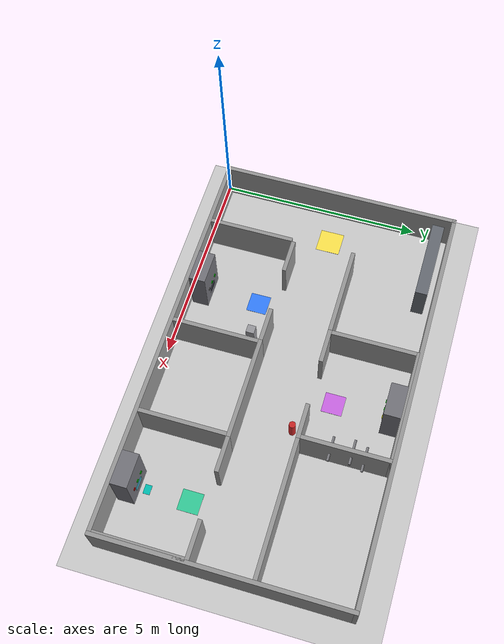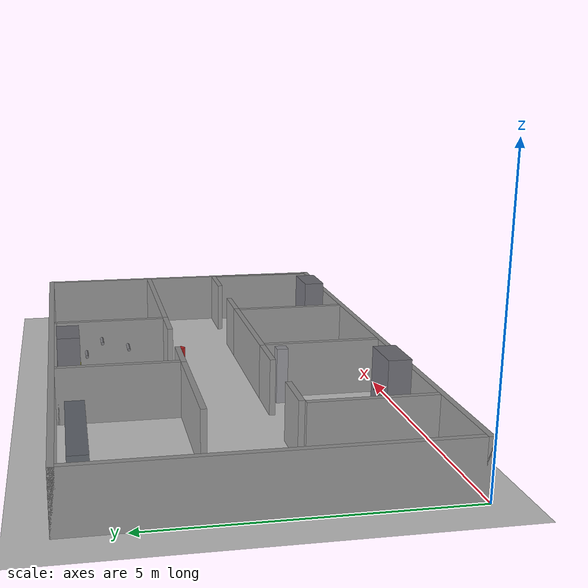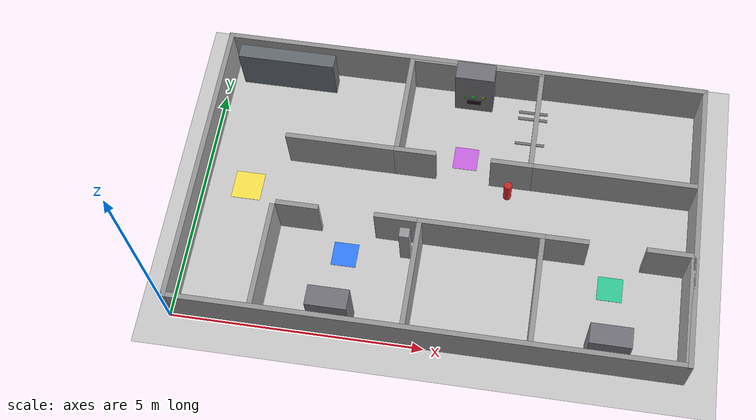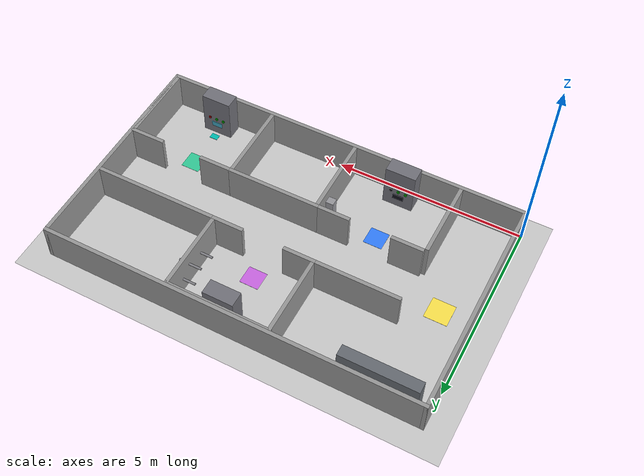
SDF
<?xml version="1.0" ?>
<sdf version="1.6">
  <world name="test_room">

    <physics type="ode">
      <max_step_size>0.001</max_step_size>
      <real_time_factor>1.0</real_time_factor>
    </physics>

    <scene>
      <ambient>0.55 0.55 0.55 1</ambient>
      <background>0.75 0.78 0.82 1</background>
      <shadows>true</shadows>
    </scene>

    <light type="directional" name="sun">
      <cast_shadows>true</cast_shadows>
      <pose>0 0 10 0 0.6 0</pose>
      <diffuse>0.9 0.9 0.85 1</diffuse>
      <specular>0.3 0.3 0.3 1</specular>
      <direction>-0.3 0.1 -1</direction>
    </light>

    <include>
      <uri>model://ground_plane</uri>
    </include>

    <!-- ═══════════════ 外墙 10 × 6 m ═══════════════ -->
    <model name="wall_south">
      <pose>5.0 0.05 0.5 0 0 0</pose>
      <static>true</static>
      <link name="link">
        <collision name="collision"><geometry><box><size>10.0 0.1 1.0</size></box></geometry><laser_retro>80.0</laser_retro></collision>
        <visual name="visual"><geometry><box><size>10.0 0.1 1.0</size></box></geometry>
          <material><script><uri>file://media/materials/scripts/gazebo.material</uri><name>Gazebo/Grey</name></script></material>
        </visual>
      </link>
    </model>
    <model name="wall_north">
      <pose>5.0 5.95 0.5 0 0 0</pose>
      <static>true</static>
      <link name="link">
        <collision name="collision"><geometry><box><size>10.0 0.1 1.0</size></box></geometry><laser_retro>80.0</laser_retro></collision>
        <visual name="visual"><geometry><box><size>10.0 0.1 1.0</size></box></geometry>
          <material><script><uri>file://media/materials/scripts/gazebo.material</uri><name>Gazebo/Grey</name></script></material>
        </visual>
      </link>
    </model>
    <model name="wall_west">
      <pose>0.05 3.0 0.5 0 0 0</pose>
      <static>true</static>
      <link name="link">
        <collision name="collision"><geometry><box><size>0.1 6.0 1.0</size></box></geometry><laser_retro>80.0</laser_retro></collision>
        <visual name="visual"><geometry><box><size>0.1 6.0 1.0</size></box></geometry>
          <material><script><uri>file://media/materials/scripts/gazebo.material</uri><name>Gazebo/Grey</name></script></material>
        </visual>
      </link>
    </model>
    <model name="wall_east">
      <pose>9.95 3.0 0.5 0 0 0</pose>
      <static>true</static>
      <link name="link">
        <collision name="collision"><geometry><box><size>0.1 6.0 1.0</size></box></geometry><laser_retro>80.0</laser_retro></collision>
        <visual name="visual"><geometry><box><size>0.1 6.0 1.0</size></box></geometry>
          <material><script><uri>file://media/materials/scripts/gazebo.material</uri><name>Gazebo/Grey</name></script></material>
        </visual>
      </link>
    </model>

    <!-- ═══════════════ 内墙：房 A（西南 2.8×2.0）门 1.1 m 朝走廊 ═══════════════ -->
    <model name="wall_a_west">
      <pose>1.7 1.15 0.5 0 0 0</pose>
      <static>true</static>
      <link name="link">
        <collision name="collision"><geometry><box><size>0.1 2.1 1.0</size></box></geometry><laser_retro>80.0</laser_retro></collision>
        <visual name="visual"><geometry><box><size>0.1 2.1 1.0</size></box></geometry>
          <material><script><uri>file://media/materials/scripts/gazebo.material</uri><name>Gazebo/Grey</name></script></material>
        </visual>
      </link>
    </model>
    <model name="wall_a_east">
      <pose>4.6 1.15 0.5 0 0 0</pose>
      <static>true</static>
      <link name="link">
        <collision name="collision"><geometry><box><size>0.1 2.1 1.0</size></box></geometry><laser_retro>80.0</laser_retro></collision>
        <visual name="visual"><geometry><box><size>0.1 2.1 1.0</size></box></geometry>
          <material><script><uri>file://media/materials/scripts/gazebo.material</uri><name>Gazebo/Grey</name></script></material>
        </visual>
      </link>
    </model>
    <!-- 房 A 北墙：门 x∈[2.60,3.70] 净宽 1.1 m -->
    <model name="wall_a_north_L">
      <pose>2.175 2.25 0.5 0 0 0</pose>
      <static>true</static>
      <link name="link">
        <collision name="collision"><geometry><box><size>0.85 0.1 1.0</size></box></geometry><laser_retro>80.0</laser_retro></collision>
        <visual name="visual"><geometry><box><size>0.85 0.1 1.0</size></box></geometry>
          <material><script><uri>file://media/materials/scripts/gazebo.material</uri><name>Gazebo/Grey</name></script></material>
        </visual>
      </link>
    </model>
    <model name="wall_a_north_R">
      <pose>4.125 2.25 0.5 0 0 0</pose>
      <static>true</static>
      <link name="link">
        <collision name="collision"><geometry><box><size>0.85 0.1 1.0</size></box></geometry><laser_retro>80.0</laser_retro></collision>
        <visual name="visual"><geometry><box><size>0.85 0.1 1.0</size></box></geometry>
          <material><script><uri>file://media/materials/scripts/gazebo.material</uri><name>Gazebo/Grey</name></script></material>
        </visual>
      </link>
    </model>

    <!-- ═══════════════ 内墙：房 B（东南）门 1.1 m ═══════════════ -->
    <model name="wall_b_west">
      <pose>7.0 1.15 0.5 0 0 0</pose>
      <static>true</static>
      <link name="link">
        <collision name="collision"><geometry><box><size>0.1 2.1 1.0</size></box></geometry><laser_retro>80.0</laser_retro></collision>
        <visual name="visual"><geometry><box><size>0.1 2.1 1.0</size></box></geometry>
          <material><script><uri>file://media/materials/scripts/gazebo.material</uri><name>Gazebo/Grey</name></script></material>
        </visual>
      </link>
    </model>
    <model name="wall_b_east">
      <pose>9.9 1.15 0.5 0 0 0</pose>
      <static>true</static>
      <link name="link">
        <collision name="collision"><geometry><box><size>0.1 2.1 1.0</size></box></geometry><laser_retro>80.0</laser_retro></collision>
        <visual name="visual"><geometry><box><size>0.1 2.1 1.0</size></box></geometry>
          <material><script><uri>file://media/materials/scripts/gazebo.material</uri><name>Gazebo/Grey</name></script></material>
        </visual>
      </link>
    </model>
    <model name="wall_b_north_L">
      <pose>7.475 2.25 0.5 0 0 0</pose>
      <static>true</static>
      <link name="link">
        <collision name="collision"><geometry><box><size>0.85 0.1 1.0</size></box></geometry><laser_retro>80.0</laser_retro></collision>
        <visual name="visual"><geometry><box><size>0.85 0.1 1.0</size></box></geometry>
          <material><script><uri>file://media/materials/scripts/gazebo.material</uri><name>Gazebo/Grey</name></script></material>
        </visual>
      </link>
    </model>
    <model name="wall_b_north_R">
      <pose>9.475 2.25 0.5 0 0 0</pose>
      <static>true</static>
      <link name="link">
        <collision name="collision"><geometry><box><size>0.95 0.1 1.0</size></box></geometry><laser_retro>80.0</laser_retro></collision>
        <visual name="visual"><geometry><box><size>0.95 0.1 1.0</size></box></geometry>
          <material><script><uri>file://media/materials/scripts/gazebo.material</uri><name>Gazebo/Grey</name></script></material>
        </visual>
      </link>
    </model>

    <!-- 房 A/B 之间南段封闭（死胡同分隔） -->
    <model name="wall_mid_south">
      <pose>5.8 2.25 0.5 0 0 0</pose>
      <static>true</static>
      <link name="link">
        <collision name="collision"><geometry><box><size>2.5 0.1 1.0</size></box></geometry><laser_retro>80.0</laser_retro></collision>
        <visual name="visual"><geometry><box><size>2.5 0.1 1.0</size></box></geometry>
          <material><script><uri>file://media/materials/scripts/gazebo.material</uri><name>Gazebo/Grey</name></script></material>
        </visual>
      </link>
    </model>

    <!-- ═══════════════ 内墙：房 C（北中）门 1.1 m 朝南 ═══════════════ -->
    <model name="wall_c_south_L">
      <pose>4.275 3.75 0.5 0 0 0</pose>
      <static>true</static>
      <link name="link">
        <collision name="collision"><geometry><box><size>0.85 0.1 1.0</size></box></geometry><laser_retro>80.0</laser_retro></collision>
        <visual name="visual"><geometry><box><size>0.85 0.1 1.0</size></box></geometry>
          <material><script><uri>file://media/materials/scripts/gazebo.material</uri><name>Gazebo/Grey</name></script></material>
        </visual>
      </link>
    </model>
    <model name="wall_c_south_R">
      <pose>6.225 3.75 0.5 0 0 0</pose>
      <static>true</static>
      <link name="link">
        <collision name="collision"><geometry><box><size>0.85 0.1 1.0</size></box></geometry><laser_retro>80.0</laser_retro></collision>
        <visual name="visual"><geometry><box><size>0.85 0.1 1.0</size></box></geometry>
          <material><script><uri>file://media/materials/scripts/gazebo.material</uri><name>Gazebo/Grey</name></script></material>
        </visual>
      </link>
    </model>
    <model name="wall_c_west">
      <pose>3.9 4.85 0.5 0 0 0</pose>
      <static>true</static>
      <link name="link">
        <collision name="collision"><geometry><box><size>0.1 2.1 1.0</size></box></geometry><laser_retro>80.0</laser_retro></collision>
        <visual name="visual"><geometry><box><size>0.1 2.1 1.0</size></box></geometry>
          <material><script><uri>file://media/materials/scripts/gazebo.material</uri><name>Gazebo/Grey</name></script></material>
        </visual>
      </link>
    </model>
    <model name="wall_c_east">
      <pose>6.6 4.85 0.5 0 0 0</pose>
      <static>true</static>
      <link name="link">
        <collision name="collision"><geometry><box><size>0.1 2.1 1.0</size></box></geometry><laser_retro>80.0</laser_retro></collision>
        <visual name="visual"><geometry><box><size>0.1 2.1 1.0</size></box></geometry>
          <material><script><uri>file://media/materials/scripts/gazebo.material</uri><name>Gazebo/Grey</name></script></material>
        </visual>
      </link>
    </model>
    <model name="wall_c_north">
      <pose>5.25 5.9 0.5 0 0 0</pose>
      <static>true</static>
      <link name="link">
        <collision name="collision"><geometry><box><size>2.8 0.1 1.0</size></box></geometry><laser_retro>80.0</laser_retro></collision>
        <visual name="visual"><geometry><box><size>2.8 0.1 1.0</size></box></geometry>
          <material><script><uri>file://media/materials/scripts/gazebo.material</uri><name>Gazebo/Grey</name></script></material>
        </visual>
      </link>
    </model>

    <!-- 走廊北墙段（房 C 两侧） -->
    <model name="wall_corridor_north_W">
      <pose>2.75 3.75 0.5 0 0 0</pose>
      <static>true</static>
      <link name="link">
        <collision name="collision"><geometry><box><size>2.2 0.1 1.0</size></box></geometry><laser_retro>80.0</laser_retro></collision>
        <visual name="visual"><geometry><box><size>2.2 0.1 1.0</size></box></geometry>
          <material><script><uri>file://media/materials/scripts/gazebo.material</uri><name>Gazebo/Grey</name></script></material>
        </visual>
      </link>
    </model>
    <model name="wall_corridor_north_E">
      <pose>8.275 3.75 0.5 0 0 0</pose>
      <static>true</static>
      <link name="link">
        <collision name="collision"><geometry><box><size>3.25 0.1 1.0</size></box></geometry><laser_retro>80.0</laser_retro></collision>
        <visual name="visual"><geometry><box><size>3.25 0.1 1.0</size></box></geometry>
          <material><script><uri>file://media/materials/scripts/gazebo.material</uri><name>Gazebo/Grey</name></script></material>
        </visual>
      </link>
    </model>

    <!-- ═══════════════ 场景特征：立柱 / 设备架 / 灭火器 / 管线 ═══════════════ -->
    <model name="room_a_column">
      <pose>4.35 1.95 0.5 0 0 0</pose>
      <static>true</static>
      <link name="link">
        <collision name="collision"><geometry><box><size>0.2 0.2 1.0</size></box></geometry><laser_retro>85.0</laser_retro></collision>
        <visual name="visual"><geometry><box><size>0.2 0.2 1.0</size></box></geometry>
          <material><ambient>0.5 0.5 0.52 1</ambient><diffuse>0.6 0.6 0.62 1</diffuse></material>
        </visual>
      </link>
    </model>

    <model name="equipment_rack">
      <pose>1.3 5.6 0.5 0 0 0</pose>
      <static>true</static>
      <link name="link">
        <collision name="collision"><geometry><box><size>2.0 0.3 1.0</size></box></geometry><laser_retro>75.0</laser_retro></collision>
        <visual name="visual"><geometry><box><size>2.0 0.3 1.0</size></box></geometry>
          <material><ambient>0.3 0.32 0.35 1</ambient><diffuse>0.4 0.42 0.45 1</diffuse></material>
        </visual>
      </link>
    </model>

    <model name="fire_extinguisher">
      <pose>6.2 3.5 0.25 0 0 0</pose>
      <static>true</static>
      <link name="link">
        <collision name="collision"><geometry><cylinder><radius>0.08</radius><length>0.5</length></cylinder></geometry><laser_retro>70.0</laser_retro></collision>
        <visual name="visual"><geometry><cylinder><radius>0.08</radius><length>0.5</length></cylinder></geometry>
          <material><ambient>0.7 0.1 0.1 1</ambient><diffuse>0.8 0.15 0.15 1</diffuse></material>
        </visual>
      </link>
    </model>

    <model name="room_c_pipe_1">
      <pose>6.52 4.5 0.5 0 1.5708 0</pose>
      <static>true</static>
      <link name="link">
        <collision name="collision"><geometry><cylinder><radius>0.03</radius><length>0.6</length></cylinder></geometry><laser_retro>60.0</laser_retro></collision>
        <visual name="visual"><geometry><cylinder><radius>0.03</radius><length>0.6</length></cylinder></geometry>
          <material><ambient>0.4 0.4 0.42 1</ambient><diffuse>0.5 0.5 0.52 1</diffuse></material>
        </visual>
      </link>
    </model>
    <model name="room_c_pipe_2">
      <pose>6.52 5.0 0.65 0 1.5708 0</pose>
      <static>true</static>
      <link name="link">
        <collision name="collision"><geometry><cylinder><radius>0.03</radius><length>0.6</length></cylinder></geometry><laser_retro>60.0</laser_retro></collision>
        <visual name="visual"><geometry><cylinder><radius>0.03</radius><length>0.6</length></cylinder></geometry>
          <material><ambient>0.4 0.4 0.42 1</ambient><diffuse>0.5 0.5 0.52 1</diffuse></material>
        </visual>
      </link>
    </model>
    <model name="room_c_pipe_3">
      <pose>6.52 5.3 0.4 0 1.5708 0</pose>
      <static>true</static>
      <link name="link">
        <collision name="collision"><geometry><cylinder><radius>0.03</radius><length>0.6</length></cylinder></geometry><laser_retro>60.0</laser_retro></collision>
        <visual name="visual"><geometry><cylinder><radius>0.03</radius><length>0.6</length></cylinder></geometry>
          <material><ambient>0.4 0.4 0.42 1</ambient><diffuse>0.5 0.5 0.52 1</diffuse></material>
        </visual>
      </link>
    </model>

    <!-- ═══════════════ 柜位视觉资产 W1（选项 A 默认静态布局；漏液固定不随机）═══════════════ -->
    <!-- 材质约定：灯 green/red/yellow=有色 emissive；off/dark 必须显式 emissive=0 0 0 1（省略会残留旧发光）。 -->
    <!-- 布局：灯一排在上 z≈0.52；面板在下 z≈0.32（高 0.15→顶≈0.395），中间留空，避免与灯重叠。 -->
    <!-- GT 粗态：A leds=[green,green,off] panel=dark leak=none；B=[green,green,red] lit + 固定漏液；C=[green,green,yellow] dark -->

    <!-- ═══════════════ 柜 A（3.15, 0.35）绿/绿/灭 · 面板 dark · 无漏液 ═══════════════ -->
    <model name="cabinet_a">
      <pose>3.15 0.35 0.6 0 0 0</pose>
      <static>true</static>
      <link name="body">
        <collision name="collision"><geometry><box><size>0.8 0.4 1.2</size></box></geometry><laser_retro>70.0</laser_retro></collision>
        <visual name="visual"><geometry><box><size>0.8 0.4 1.2</size></box></geometry>
          <material><ambient>0.35 0.35 0.38 1</ambient><diffuse>0.45 0.45 0.48 1</diffuse></material>
        </visual>
      </link>
    </model>
    <model name="cabinet_a_led_1">
      <!-- state: green · Ø8cm · z≈0.52（灯带在上） -->
      <pose>2.95 0.560 0.52 1.5708 0 0</pose>
      <static>true</static>
      <link name="link"><visual name="visual"><geometry><cylinder><radius>0.04</radius><length>0.02</length></cylinder></geometry>
        <material><ambient>0 0.8 0 1</ambient><diffuse>0 0.6 0 1</diffuse><emissive>0 1 0 1</emissive></material>
      </visual></link>
    </model>
    <model name="cabinet_a_led_2">
      <!-- state: green -->
      <pose>3.15 0.560 0.52 1.5708 0 0</pose>
      <static>true</static>
      <link name="link"><visual name="visual"><geometry><cylinder><radius>0.04</radius><length>0.02</length></cylinder></geometry>
        <material><ambient>0 0.8 0 1</ambient><diffuse>0 0.6 0 1</diffuse><emissive>0 1 0 1</emissive></material>
      </visual></link>
    </model>
    <model name="cabinet_a_led_3">
      <!-- state: off（显式零 emissive） -->
      <pose>3.35 0.560 0.52 1.5708 0 0</pose>
      <static>true</static>
      <link name="link"><visual name="visual"><geometry><cylinder><radius>0.04</radius><length>0.02</length></cylinder></geometry>
        <material><ambient>0.02 0.02 0.02 1</ambient><diffuse>0.04 0.04 0.04 1</diffuse><emissive>0 0 0 1</emissive></material>
      </visual></link>
    </model>
    <model name="cabinet_a_panel">
      <!-- state: dark · 屏在灯下方，z 中心 0.32 -->
      <pose>3.15 0.555 0.32 0 0 0</pose>
      <static>true</static>
      <link name="link"><visual name="visual"><geometry><box><size>0.30 0.01 0.15</size></box></geometry>
        <material><ambient>0.05 0.05 0.08 1</ambient><diffuse>0.08 0.08 0.12 1</diffuse><emissive>0 0 0 1</emissive></material>
      </visual></link>
    </model>

    <!-- ═══════════════ 柜 B（8.45, 0.35）绿/绿/红 · 面板 lit · 固定漏液 FAIL ═══════════════ -->
    <model name="cabinet_b">
      <pose>8.45 0.35 0.6 0 0 0</pose>
      <static>true</static>
      <link name="body">
        <collision name="collision"><geometry><box><size>0.8 0.4 1.2</size></box></geometry><laser_retro>70.0</laser_retro></collision>
        <visual name="visual"><geometry><box><size>0.8 0.4 1.2</size></box></geometry>
          <material><ambient>0.35 0.35 0.38 1</ambient><diffuse>0.45 0.45 0.48 1</diffuse></material>
        </visual>
      </link>
    </model>
    <model name="cabinet_b_led_1">
      <!-- state: green -->
      <pose>8.25 0.560 0.52 1.5708 0 0</pose>
      <static>true</static>
      <link name="link"><visual name="visual"><geometry><cylinder><radius>0.04</radius><length>0.02</length></cylinder></geometry>
        <material><ambient>0 0.8 0 1</ambient><diffuse>0 0.6 0 1</diffuse><emissive>0 1 0 1</emissive></material>
      </visual></link>
    </model>
    <model name="cabinet_b_led_2">
      <!-- state: green -->
      <pose>8.45 0.560 0.52 1.5708 0 0</pose>
      <static>true</static>
      <link name="link"><visual name="visual"><geometry><cylinder><radius>0.04</radius><length>0.02</length></cylinder></geometry>
        <material><ambient>0 0.8 0 1</ambient><diffuse>0 0.6 0 1</diffuse><emissive>0 1 0 1</emissive></material>
      </visual></link>
    </model>
    <model name="cabinet_b_led_3">
      <!-- state: red -->
      <pose>8.65 0.560 0.52 1.5708 0 0</pose>
      <static>true</static>
      <link name="link"><visual name="visual"><geometry><cylinder><radius>0.04</radius><length>0.02</length></cylinder></geometry>
        <material><ambient>0.8 0 0 1</ambient><diffuse>0.6 0 0 1</diffuse><emissive>1 0 0 1</emissive></material>
      </visual></link>
    </model>
    <model name="cabinet_b_panel">
      <!-- state: lit（亮区 emissive；YOLO 类 panel，亮暗由 ROI）· 屏在灯下方 -->
      <pose>8.45 0.555 0.32 0 0 0</pose>
      <static>true</static>
      <link name="link"><visual name="visual"><geometry><box><size>0.30 0.01 0.15</size></box></geometry>
        <material><ambient>0.15 0.45 0.55 1</ambient><diffuse>0.25 0.65 0.75 1</diffuse><emissive>0.35 0.95 1.0 1</emissive></material>
      </visual></link>
    </model>
    <!-- 固定漏液 FAIL：标准化青绿色块；名含 inspection_region；无 collision（不扰动导航） -->
    <model name="cabinet_b_inspection_region">
      <pose>8.45 0.72 0.005 0 0 0</pose>
      <static>true</static>
      <link name="link">
        <visual name="visual"><geometry><box><size>0.22 0.16 0.01</size></box></geometry>
          <material><ambient>0.0 0.55 0.55 1</ambient><diffuse>0.0 0.75 0.7 1</diffuse><emissive>0.0 0.45 0.4 1</emissive></material>
        </visual>
      </link>
    </model>

    <!-- ═══════════════ 柜 C（5.25, 5.65）绿/绿/黄 · 面板 dark · 无漏液 ═══════════════ -->
    <model name="cabinet_c">
      <pose>5.25 5.65 0.6 0 0 0</pose>
      <static>true</static>
      <link name="body">
        <collision name="collision"><geometry><box><size>0.8 0.4 1.2</size></box></geometry><laser_retro>70.0</laser_retro></collision>
        <visual name="visual"><geometry><box><size>0.8 0.4 1.2</size></box></geometry>
          <material><ambient>0.35 0.35 0.38 1</ambient><diffuse>0.45 0.45 0.48 1</diffuse></material>
        </visual>
      </link>
    </model>
    <model name="cabinet_c_led_1">
      <!-- state: green -->
      <pose>5.05 5.440 0.52 1.5708 0 0</pose>
      <static>true</static>
      <link name="link"><visual name="visual"><geometry><cylinder><radius>0.04</radius><length>0.02</length></cylinder></geometry>
        <material><ambient>0 0.8 0 1</ambient><diffuse>0 0.6 0 1</diffuse><emissive>0 1 0 1</emissive></material>
      </visual></link>
    </model>
    <model name="cabinet_c_led_2">
      <!-- state: green -->
      <pose>5.25 5.440 0.52 1.5708 0 0</pose>
      <static>true</static>
      <link name="link"><visual name="visual"><geometry><cylinder><radius>0.04</radius><length>0.02</length></cylinder></geometry>
        <material><ambient>0 0.8 0 1</ambient><diffuse>0 0.6 0 1</diffuse><emissive>0 1 0 1</emissive></material>
      </visual></link>
    </model>
    <model name="cabinet_c_led_3">
      <!-- state: yellow -->
      <pose>5.45 5.440 0.52 1.5708 0 0</pose>
      <static>true</static>
      <link name="link"><visual name="visual"><geometry><cylinder><radius>0.04</radius><length>0.02</length></cylinder></geometry>
        <material><ambient>0.8 0.8 0 1</ambient><diffuse>0.6 0.6 0 1</diffuse><emissive>1 1 0 1</emissive></material>
      </visual></link>
    </model>
    <model name="cabinet_c_panel">
      <!-- state: dark · 屏在灯下方（显式零 emissive） -->
      <pose>5.25 5.445 0.32 0 0 0</pose>
      <static>true</static>
      <link name="link"><visual name="visual"><geometry><box><size>0.30 0.01 0.15</size></box></geometry>
        <material><ambient>0.05 0.05 0.08 1</ambient><diffuse>0.08 0.08 0.12 1</diffuse><emissive>0 0 0 1</emissive></material>
      </visual></link>
    </model>

    <!-- ═══════════════ 地面标记（visual only，无 collision）═══════════════ -->
    <model name="charge_marker">
      <pose>0.9 3.0 0.002 0 0 0</pose>
      <static>true</static>
      <link name="link"><visual name="visual"><geometry><box><size>0.6 0.6 0.004</size></box></geometry>
        <material><ambient>0.9 0.85 0.2 1</ambient><diffuse>1.0 0.9 0.3 1</diffuse><emissive>0.3 0.25 0.05 1</emissive></material>
      </visual></link>
    </model>
    <model name="parking_marker_a">
      <pose>3.15 1.75 0.002 0 0 0</pose>
      <static>true</static>
      <link name="link"><visual name="visual"><geometry><box><size>0.5 0.5 0.004</size></box></geometry>
        <material><ambient>0.1 0.4 0.9 1</ambient><diffuse>0.2 0.5 1.0 1</diffuse><emissive>0.05 0.15 0.4 1</emissive></material>
      </visual></link>
    </model>
    <model name="parking_marker_b">
      <pose>8.45 1.75 0.002 0 0 0</pose>
      <static>true</static>
      <link name="link"><visual name="visual"><geometry><box><size>0.5 0.5 0.004</size></box></geometry>
        <material><ambient>0.1 0.7 0.5 1</ambient><diffuse>0.2 0.8 0.6 1</diffuse><emissive>0.05 0.25 0.15 1</emissive></material>
      </visual></link>
    </model>
    <model name="parking_marker_c">
      <pose>5.25 4.25 0.002 0 0 0</pose>
      <static>true</static>
      <link name="link"><visual name="visual"><geometry><box><size>0.5 0.5 0.004</size></box></geometry>
        <material><ambient>0.7 0.3 0.8 1</ambient><diffuse>0.8 0.4 0.9 1</diffuse><emissive>0.25 0.1 0.3 1</emissive></material>
      </visual></link>
    </model>

  </world>
</sdf>
